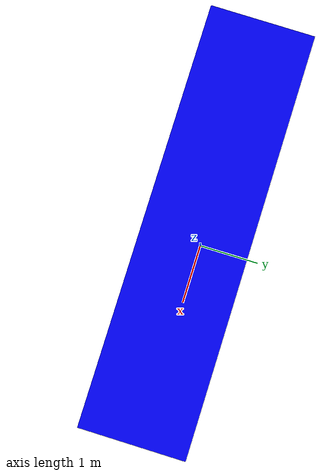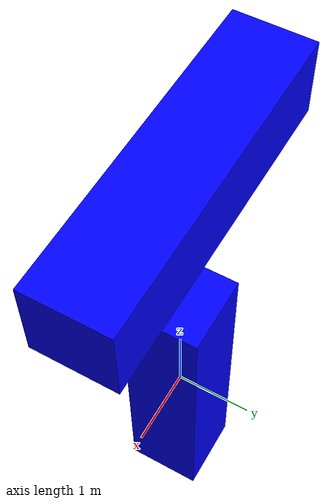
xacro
<?xml version="1.0" ?>
<robot xmlns:xacro="http://www.ros.org/wiki/xacro" name="suction_gripper">
	<xacro:include filename="$(find freetail_grasp_planning)/urdf/generic_constructs.xacro" />
	<xacro:link_construct link_name="link_1">
		<xacro:inertial_block xyz_vals="0 0 0" rpy_vals="0 0 0" mass="1.0" />
		<xacro:box_visual_block xyz="0 0 0" rpy="0 0 0" size="1 1 4" color_name="Blue" />
		<xacro:box_collision_block xyz="0 0 0" rpy="0 0 0" size="1 1 4" color_name="Yellow" />
	</xacro:link_construct>
	<xacro:link_construct link_name="link_2">
		<xacro:inertial_block xyz_vals="0 0 0" rpy_vals="0 0 0" mass="1.0" />
		<xacro:box_visual_block xyz="0 0 0" rpy="0 0 0" size="4 1 1" color_name="Blue" />
		<xacro:box_collision_block xyz="0 0 0" rpy="0 0 0" size="4 1 1" color_name="Yellow" />
	</xacro:link_construct>
	<xacro:prismatic_joint joint_name="joint_1" parent="link_1" child="link_2" xyz="0 0 4" rpy="0 0 0"
xyz_a="0 0 1" effr="100" vel="1" lw="0.0" up="0.0"/>
</robot>

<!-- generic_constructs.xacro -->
<robot xmlns:xacro="http://www.ros.org/wiki/xacro" name="generic_constructs">
	<!-- template block for material block -->
	<xacro:macro name="material_block" params="color_name rgba_vals">
		<material name="${color_name}">
			<color rgba="${rgba_vals}"/>
		</material>
	</xacro:macro>

	<!-- instantiated material blocks -->
	<xacro:material_block color_name="Blue" rgba_vals="0 0 1 1"/>
	<xacro:material_block color_name="Red" rgba_vals="1 0 0 1"/>
	<xacro:material_block color_name="Green" rgba_vals="0 1 0 1"/>
	<xacro:material_block color_name="Gray" rgba_vals="0.8 0.8 0.8 1"/>
	<xacro:material_block color_name="Yellow" rgba_vals="1 1 0 1"/>

	<!-- template block for inertial block -->
	<xacro:macro name="inertial_block" params="xyz_vals rpy_vals mass">
		<inertial>
			<origin xyz="${xyz_vals}" rpy="${rpy_vals}"/>
			<mass value="${mass}"/>
			<inertia ixx="1"  ixy="0"  ixz="0" iyy="1" iyz="0" izz="1"/>
		</inertial>
	</xacro:macro>

	<!-- template block for box shaped collision and visual subblocks -->
	<xacro:macro name="box_shape_sub_blocks" params="xyz_vals rpy_vals size_vals color_name">
		<origin xyz="${xyz_vals}" rpy="${rpy_vals}" />
		<geometry>
			<box size="${size_vals}" />
		</geometry>
		<material name="${color_name}" />
	</xacro:macro>

	<!-- template block for box visual block -->
	<xacro:macro name="box_visual_block" params="xyz rpy size color_name">
		<visual>
			<xacro:box_shape_sub_blocks xyz_vals="${xyz}" rpy_vals="${rpy}" size_vals="${size}" color_name="${color_name}"/>
		</visual>
	</xacro:macro>

	<!-- template block for box collision block -->
	<xacro:macro name="box_collision_block" params="xyz rpy size color_name">
		<collision>
			<xacro:box_shape_sub_blocks xyz_vals="${xyz}" rpy_vals="${rpy}" size_vals="${size}" color_name="${color_name}"/>
		</collision>
	</xacro:macro>

	<!-- template block for mesh collision and visual subblocks -->
	<xacro:macro name="mesh_shape_sub_blocks" params="xyz_vals rpy_vals mesh_refc color_name">
		<origin xyz="${xyz_vals}" rpy="${rpy_vals}"/>
		<geometry>
			<mesh filename="package://${mesh_refc}"/>
		</geometry>
		<material name="${color_name}"/>
	</xacro:macro>

	<!-- template block for fixed joints -->
	<xacro:macro name="fixed_joint" params="joint_name parent child xyz rpy">
		<joint name="${joint_name}" type="fixed">
			<origin xyz="${xyz}" rpy="${rpy}"/>
			<parent link="${parent}"/>
			<child link="${child}"/>
		</joint>
	</xacro:macro>

	<!-- template for prismatic joints -->
	<xacro:macro name="prismatic_joint" params="joint_name parent child xyz rpy xyz_a effr vel lw up">
		<joint name="${joint_name}" type="prismatic">
			<origin xyz="${xyz}" rpy="${rpy}"/>
			<parent link="${parent}"/>
			<child link="${child}"/>
			<axis xyz="${xyz_a}"/>
			<limit effort="${effr}" velocity="${vel}" lower="${lw}" upper="${up}"/>
		</joint>
	</xacro:macro>

	<!-- template block for revolute joints -->
	<xacro:macro name="revolute_joint" params="joint_name parent child xyz rpy xyz_a">
		<joint name="${joint_name}" type="revolute">
			<origin xyz="${xyz}" rpy="${rpy}"/>
			<parent link="${parent}"/>
			<child link="${child}"/>
			<axis xyz="${xyz_a}"/>
		</joint>
	</xacro:macro>
	<!-- template block link construct -->
	<xacro:macro name="link_construct" params="link_name *inertial_block *visual *collision">
		<link name="${link_name}">
			<xacro:insert_block name="inertial_block"/>
			<xacro:insert_block name="visual"/>
			<xacro:insert_block name="collision"/>
		</link>
	</xacro:macro>
	<!-- template block for box link blocks -->
	<xacro:macro name="link_box_construct" params="link_name xyz_i rpy_i xyz_s rpy_s mass size">
		<link name="${link_name}">
			<xacro:inertial_block xyz_vals="${xyz_i}" rpy_vals="${rpy_i}" mass="${mass}"/>
			<visual>
				<xacro:box_shape_sub_blocks xyz_vals="${xyz_s}" rpy_vals="${rpy_s}" size_vals="${size}"
					color_name="Blue"/>
			</visual>
			<collision>
				<xacro:box_shape_sub_blocks xyz_vals="${xyz_s}" rpy_vals="${rpy_s}" size_vals="${size}"
					color_name="Yellow"/>
			</collision>
		</link>
	</xacro:macro>
</robot>
